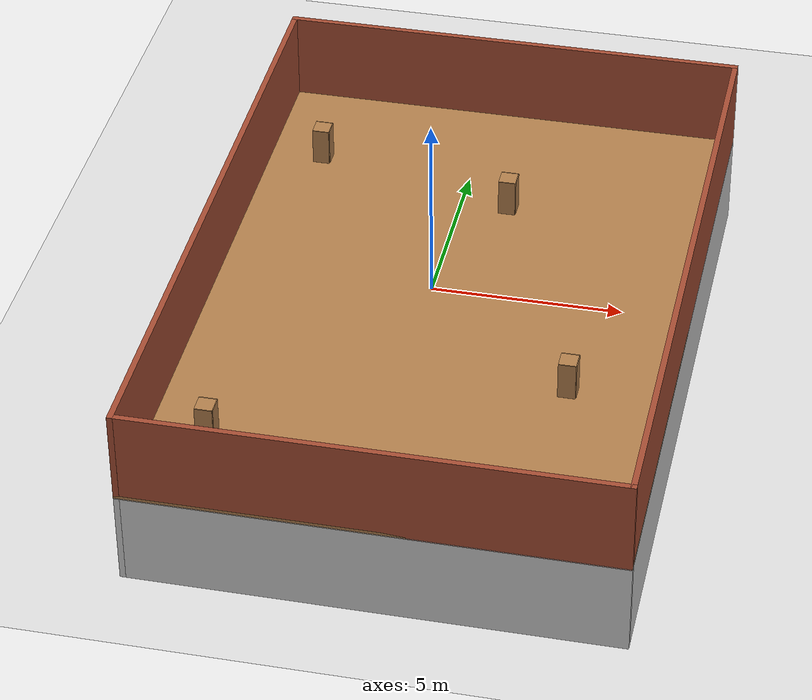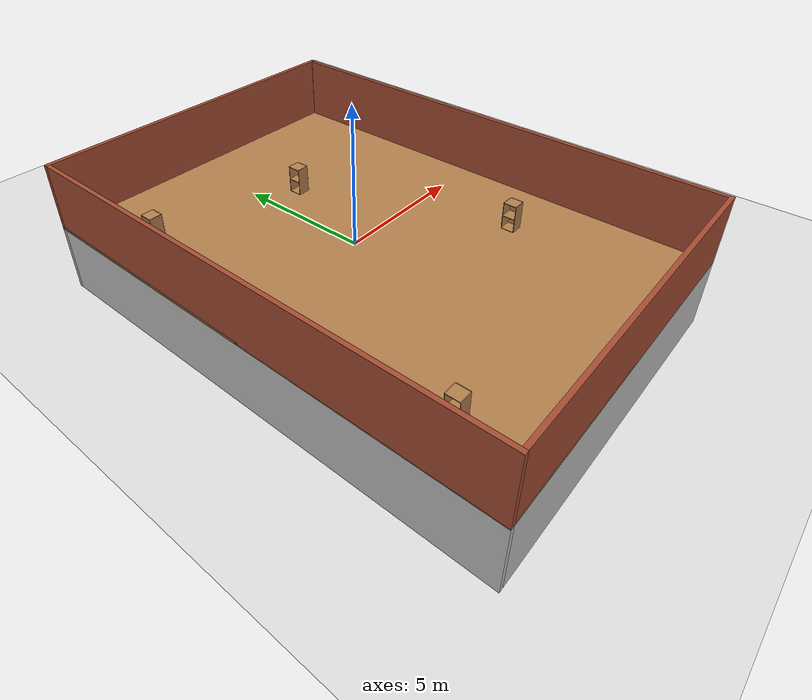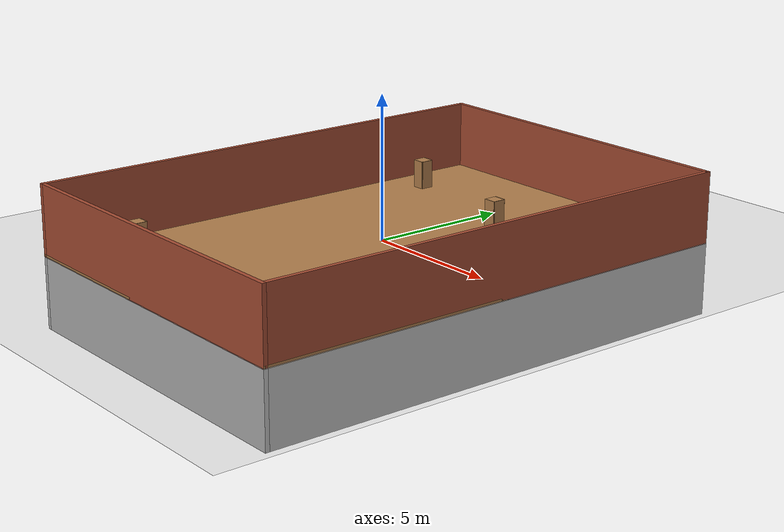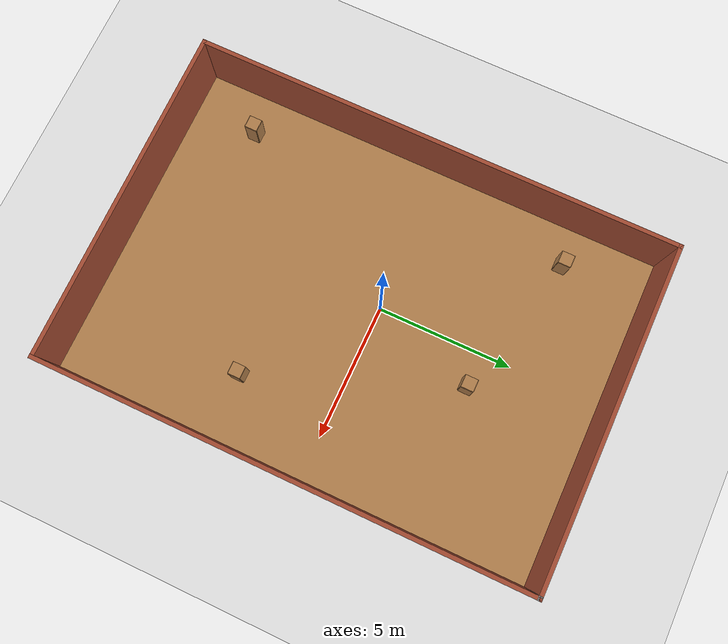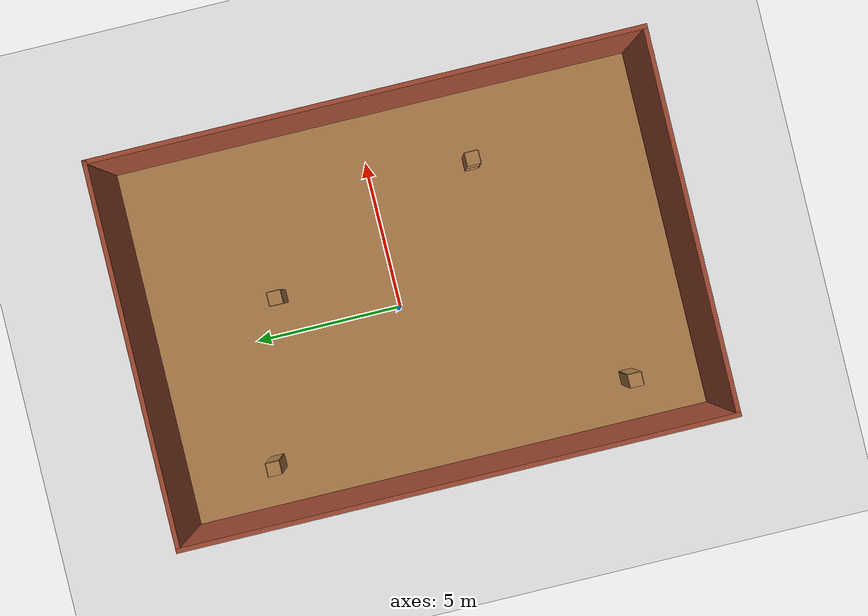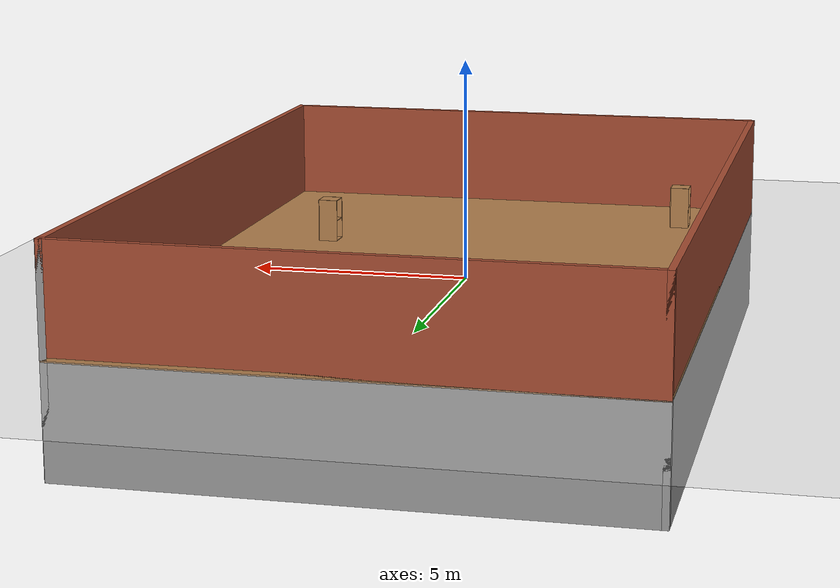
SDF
<sdf version="1.6">
 <world name="default">
  <light name="sun" type="directional">
   <pose>0 0 10 0 -0 0</pose>
   <diffuse>0.8 0.8 0.8 1</diffuse>
   <specular>0.2 0.2 0.2 1</specular>
   <attenuation>
    <range>1000</range>
    <constant>0.9</constant>
    <linear>0.01</linear>
    <quadratic>0.001</quadratic>
   </attenuation>
   <direction>-0.5 0.1 -0.9</direction>
  </light>
  <model name="ground_plane">
   <pose>0 0 -0.05 0 -0 0</pose>
   <static>1</static>
   <link name="link">
    <collision name="collision">
     <geometry><plane><normal>0 0 1</normal><size>100 100</size></plane></geometry>
     <surface>
      <contact><collide_bitmask>65535</collide_bitmask></contact>
      <friction><ode><mu>100</mu><mu2>50</mu2></ode></friction>
     </surface>
    </collision>
    <visual name="visual">
     <cast_shadows>0</cast_shadows>
     <geometry><plane><normal>0 0 1</normal><size>100 100</size></plane></geometry>
     <material>
      <script><uri>file://media/materials/scripts/gazebo.material</uri><name>Gazebo/Grey</name></script>
     </material>
    </visual>
   </link>
  </model>
  <gravity>0 0 -9.8</gravity>
  <magnetic_field>6e-06 2.3e-05 -4.2e-05</magnetic_field>
  <atmosphere type="adiabatic"/>
  <physics name="default_physics" default="0" type="ode">
   <max_step_size>0.001</max_step_size>
   <real_time_factor>1</real_time_factor>
   <real_time_update_rate>1000</real_time_update_rate>
  </physics>
  <scene><ambient>0.4 0.4 0.4 1</ambient><background>0.7 0.7 0.7 1</background><shadows>1</shadows></scene>
  <audio><device>default</device></audio>
  <spherical_coordinates>
   <surface_model>EARTH_WGS84</surface_model>
   <latitude_deg>0</latitude_deg>
   <longitude_deg>0</longitude_deg>
   <elevation>0</elevation>
   <heading_deg>0</heading_deg>
  </spherical_coordinates>
  <model name="simpleTrain">
   <pose>0.510148 -0.52757 -2.6 0 -0 0</pose>
   <link name="Floor_0">
    <collision name="Floor_0_Collision">
     <geometry><box><size>12.51 18 0.1</size></box></geometry>
     <pose>0 0 0.05 0 -0 0</pose>
    </collision>
    <visual name="Floor_0_Visual">
     <pose>0 0 0.05 0 -0 0</pose>
     <geometry><box><size>12.51 18 0.1</size></box></geometry>
     <material>
      <script><uri>file://media/materials/scripts/gazebo.material</uri><name>Gazebo/Wood</name></script>
      <ambient>1 1 1 1</ambient>
     </material>
     <meta><layer>1</layer></meta>
    </visual>
    <pose>0 -0 2.5 0 -0 0</pose>
   </link>
   <link name="Wall_11">
    <collision name="Wall_11_Collision">
     <geometry><box><size>18 0.15 2.5</size></box></geometry>
     <pose>0 0 1.25 0 -0 0</pose>
    </collision>
    <visual name="Wall_11_Visual">
     <pose>0 0 1.25 0 -0 0</pose>
     <geometry><box><size>18 0.15 2.5</size></box></geometry>
     <material>
      <script><uri>file://media/materials/scripts/gazebo.material</uri><name>Gazebo/Bricks</name></script>
      <ambient>1 1 1 1</ambient>
     </material>
     <meta><layer>1</layer></meta>
    </visual>
    <pose>-6.18 -0 2.5 0 -0 -1.5708</pose>
   </link>
   <link name="Wall_12">
    <collision name="Wall_12_Collision">
     <geometry><box><size>12.5 0.15 2.5</size></box></geometry>
     <pose>0 0 1.25 0 -0 0</pose>
    </collision>
    <visual name="Wall_12_Visual">
     <pose>0 0 1.25 0 -0 0</pose>
     <geometry><box><size>12.5 0.15 2.5</size></box></geometry>
     <material>
      <script><uri>file://media/materials/scripts/gazebo.material</uri><name>Gazebo/Bricks</name></script>
      <ambient>1 1 1 1</ambient>
     </material>
     <meta><layer>1</layer></meta>
    </visual>
    <pose>-0.005 8.925 2.5 0 -0 0</pose>
   </link>
   <link name="Wall_13">
    <collision name="Wall_13_Collision">
     <geometry><box><size>0.16 0.15 2.5</size></box></geometry>
     <pose>0 0 1.25 0 -0 0</pose>
    </collision>
    <visual name="Wall_13_Visual">
     <pose>0 0 1.25 0 -0 0</pose>
     <geometry><box><size>0.16 0.15 2.5</size></box></geometry>
     <material>
      <script><uri>file://media/materials/scripts/gazebo.material</uri><name>Gazebo/Grey</name></script>
      <ambient>1 1 1 1</ambient>
     </material>
     <meta><layer>1</layer></meta>
    </visual>
    <pose>6.175 8.925 2.5 0 -0 0</pose>
   </link>
   <link name="Wall_14">
    <collision name="Wall_14_Collision">
     <geometry><box><size>18 0.15 2.5</size></box></geometry>
     <pose>0 0 1.25 0 -0 0</pose>
    </collision>
    <visual name="Wall_14_Visual">
     <pose>0 0 1.25 0 -0 0</pose>
     <geometry><box><size>18 0.15 2.5</size></box></geometry>
     <material>
      <script><uri>file://media/materials/scripts/gazebo.material</uri><name>Gazebo/Bricks</name></script>
      <ambient>1 1 1 1</ambient>
     </material>
     <meta><layer>1</layer></meta>
    </visual>
    <pose>6.18 -0 2.5 0 -0 -1.5708</pose>
   </link>
   <link name="Wall_15">
    <collision name="Wall_15_Collision">
     <geometry><box><size>12.5 0.15 2.5</size></box></geometry>
     <pose>0 0 1.25 0 -0 0</pose>
    </collision>
    <visual name="Wall_15_Visual">
     <pose>0 0 1.25 0 -0 0</pose>
     <geometry><box><size>12.5 0.15 2.5</size></box></geometry>
     <material>
      <script><uri>file://media/materials/scripts/gazebo.material</uri><name>Gazebo/Bricks</name></script>
      <ambient>1 1 1 1</ambient>
     </material>
     <meta><layer>1</layer></meta>
    </visual>
    <pose>0.005 -8.925 2.5 0 -0 3.14159</pose>
   </link>
   <link name="Wall_4">
    <collision name="Wall_4_Collision">
     <geometry><box><size>18 0.15 2.5</size></box></geometry>
     <pose>0 0 1.25 0 -0 0</pose>
    </collision>
    <visual name="Wall_4_Visual">
     <pose>0 0 1.25 0 -0 0</pose>
     <geometry><box><size>18 0.15 2.5</size></box></geometry>
     <material>
      <script><uri>file://media/materials/scripts/gazebo.material</uri><name>Gazebo/Grey</name></script>
      <ambient>1 1 1 1</ambient>
     </material>
     <meta><layer>0</layer></meta>
    </visual>
    <pose>-6.18 -0 0 0 -0 -1.5708</pose>
   </link>
   <link name="Wall_6">
    <collision name="Wall_6_Collision">
     <geometry><box><size>12.5 0.15 2.5</size></box></geometry>
     <pose>0 0 1.25 0 -0 0</pose>
    </collision>
    <visual name="Wall_6_Visual">
     <pose>0 0 1.25 0 -0 0</pose>
     <geometry><box><size>12.5 0.15 2.5</size></box></geometry>
     <material>
      <script><uri>file://media/materials/scripts/gazebo.material</uri><name>Gazebo/Grey</name></script>
      <ambient>1 1 1 1</ambient>
     </material>
     <meta><layer>0</layer></meta>
    </visual>
    <pose>-0.005 8.925 0 0 -0 0</pose>
   </link>
   <link name="Wall_7">
    <collision name="Wall_7_Collision">
     <geometry><box><size>0.16 0.15 2.5</size></box></geometry>
     <pose>0 0 1.25 0 -0 0</pose>
    </collision>
    <visual name="Wall_7_Visual">
     <pose>0 0 1.25 0 -0 0</pose>
     <geometry><box><size>0.16 0.15 2.5</size></box></geometry>
     <material>
      <script><uri>file://media/materials/scripts/gazebo.material</uri><name>Gazebo/Grey</name></script>
      <ambient>1 1 1 1</ambient>
     </material>
     <meta><layer>0</layer></meta>
    </visual>
    <pose>6.175 8.925 0 0 -0 0</pose>
   </link>
   <link name="Wall_8">
    <collision name="Wall_8_Collision">
     <geometry><box><size>18 0.15 2.5</size></box></geometry>
     <pose>0 0 1.25 0 -0 0</pose>
    </collision>
    <visual name="Wall_8_Visual">
     <pose>0 0 1.25 0 -0 0</pose>
     <geometry><box><size>18 0.15 2.5</size></box></geometry>
     <material>
      <script><uri>file://media/materials/scripts/gazebo.material</uri><name>Gazebo/Grey</name></script>
      <ambient>1 1 1 1</ambient>
     </material>
     <meta><layer>0</layer></meta>
    </visual>
    <pose>6.18 -0 0 0 -0 -1.5708</pose>
   </link>
   <link name="Wall_9">
    <collision name="Wall_9_Collision">
     <geometry><box><size>12.5 0.15 2.5</size></box></geometry>
     <pose>0 0 1.25 0 -0 0</pose>
    </collision>
    <visual name="Wall_9_Visual">
     <pose>0 0 1.25 0 -0 0</pose>
     <geometry><box><size>12.5 0.15 2.5</size></box></geometry>
     <material>
      <script><uri>file://media/materials/scripts/gazebo.material</uri><name>Gazebo/Grey</name></script>
      <ambient>1 1 1 1</ambient>
     </material>
     <meta><layer>0</layer></meta>
    </visual>
    <pose>0.005 -8.925 0 0 -0 3.14159</pose>
   </link>
   <static>1</static>
  </model>
  <model name="cabinet">
   <static>1</static>
   <link name="cabinet_bottom_plate">
    <inertial>
     <pose>0 0 -1 0 -0 0</pose>
     <inertia><ixx>2.05</ixx><ixy>0</ixy><ixz>0</ixz><iyy>2.05</iyy><iyz>0</iyz><izz>2.05</izz></inertia>
     <mass>25</mass>
    </inertial>
    <collision name="cabinet_bottom_plate_geom">
     <pose>0 0 0.01 0 -0 0</pose>
     <geometry><box><size>0.45 0.45 0.02</size></box></geometry>
    </collision>
    <visual name="cabinet_bottom_plate_geom_visual">
     <pose>0 0 0.01 0 -0 0</pose>
     <geometry><box><size>0.45 0.45 0.02</size></box></geometry>
     <material>
      <script><uri>file://media/materials/scripts/gazebo.material</uri><name>Gazebo/Wood</name></script>
     </material>
    </visual>
    <collision name="cabinet_bottom_plate_geom_cabinet_back_plate">
     <pose>0.235 0 0.51 0 -0 0</pose>
     <geometry><box><size>0.02 0.45 1.02</size></box></geometry>
    </collision>
    <visual name="cabinet_bottom_plate_geom_cabinet_back_plate_visual">
     <pose>0.235 0 0.51 0 -0 0</pose>
     <geometry><box><size>0.02 0.45 1.02</size></box></geometry>
     <material>
      <script><uri>file://media/materials/scripts/gazebo.material</uri><name>Gazebo/Wood</name></script>
     </material>
    </visual>
    <collision name="cabinet_bottom_plate_geom_cabinet_left_plate">
     <pose>0 0.235 0.51 0 -0 0</pose>
     <geometry><box><size>0.45 0.02 1.02</size></box></geometry>
    </collision>
    <visual name="cabinet_bottom_plate_geom_cabinet_left_plate_visual">
     <pose>0 0.235 0.51 0 -0 0</pose>
     <geometry><box><size>0.45 0.02 1.02</size></box></geometry>
     <material>
      <script><uri>file://media/materials/scripts/gazebo.material</uri><name>Gazebo/Wood</name></script>
     </material>
    </visual>
    <collision name="cabinet_bottom_plate_geom_cabinet_middle_plate">
     <pose>0 0 0.51 0 -0 0</pose>
     <geometry><box><size>0.45 0.45 0.02</size></box></geometry>
    </collision>
    <visual name="cabinet_bottom_plate_geom_cabinet_middle_plate_visual">
     <pose>0 0 0.51 0 -0 0</pose>
     <geometry><box><size>0.45 0.45 0.02</size></box></geometry>
     <material>
      <script><uri>file://media/materials/scripts/gazebo.material</uri><name>Gazebo/Wood</name></script>
     </material>
    </visual>
    <collision name="cabinet_bottom_plate_geom_cabinet_right_plate">
     <pose>0 -0.235 0.51 0 -0 0</pose>
     <geometry><box><size>0.45 0.02 1.02</size></box></geometry>
    </collision>
    <visual name="cabinet_bottom_plate_geom_cabinet_right_plate_visual">
     <pose>0 -0.235 0.51 0 -0 0</pose>
     <geometry><box><size>0.45 0.02 1.02</size></box></geometry>
     <material>
      <script><uri>file://media/materials/scripts/gazebo.material</uri><name>Gazebo/Wood</name></script>
     </material>
    </visual>
    <collision name="cabinet_bottom_plate_geom_cabinet_top_plate">
     <pose>0 0 1.01 0 -0 0</pose>
     <geometry><box><size>0.45 0.45 0.02</size></box></geometry>
    </collision>
    <visual name="cabinet_bottom_plate_geom_cabinet_top_plate_visual">
     <pose>0 0 1.01 0 -0 0</pose>
     <geometry><box><size>0.45 0.45 0.02</size></box></geometry>
     <material>
      <script><uri>file://media/materials/scripts/gazebo.material</uri><name>Gazebo/Wood</name></script>
     </material>
    </visual>
   </link>
   <pose>1.26829 3.89792 0 0 -0 0</pose>
  </model>
  <model name="cabinet_0">
   <static>1</static>
   <link name="cabinet_bottom_plate">
    <inertial>
     <pose>0 0 -1 0 -0 0</pose>
     <inertia><ixx>2.05</ixx><ixy>0</ixy><ixz>0</ixz><iyy>2.05</iyy><iyz>0</iyz><izz>2.05</izz></inertia>
     <mass>25</mass>
    </inertial>
    <collision name="cabinet_bottom_plate_geom">
     <pose>0 0 0.01 0 -0 0</pose>
     <geometry><box><size>0.45 0.45 0.02</size></box></geometry>
    </collision>
    <visual name="cabinet_bottom_plate_geom_visual">
     <pose>0 0 0.01 0 -0 0</pose>
     <geometry><box><size>0.45 0.45 0.02</size></box></geometry>
     <material>
      <script><uri>file://media/materials/scripts/gazebo.material</uri><name>Gazebo/Wood</name></script>
     </material>
    </visual>
    <collision name="cabinet_bottom_plate_geom_cabinet_back_plate">
     <pose>0.235 0 0.51 0 -0 0</pose>
     <geometry><box><size>0.02 0.45 1.02</size></box></geometry>
    </collision>
    <visual name="cabinet_bottom_plate_geom_cabinet_back_plate_visual">
     <pose>0.235 0 0.51 0 -0 0</pose>
     <geometry><box><size>0.02 0.45 1.02</size></box></geometry>
     <material>
      <script><uri>file://media/materials/scripts/gazebo.material</uri><name>Gazebo/Wood</name></script>
     </material>
    </visual>
    <collision name="cabinet_bottom_plate_geom_cabinet_left_plate">
     <pose>0 0.235 0.51 0 -0 0</pose>
     <geometry><box><size>0.45 0.02 1.02</size></box></geometry>
    </collision>
    <visual name="cabinet_bottom_plate_geom_cabinet_left_plate_visual">
     <pose>0 0.235 0.51 0 -0 0</pose>
     <geometry><box><size>0.45 0.02 1.02</size></box></geometry>
     <material>
      <script><uri>file://media/materials/scripts/gazebo.material</uri><name>Gazebo/Wood</name></script>
     </material>
    </visual>
    <collision name="cabinet_bottom_plate_geom_cabinet_middle_plate">
     <pose>0 0 0.51 0 -0 0</pose>
     <geometry><box><size>0.45 0.45 0.02</size></box></geometry>
    </collision>
    <visual name="cabinet_bottom_plate_geom_cabinet_middle_plate_visual">
     <pose>0 0 0.51 0 -0 0</pose>
     <geometry><box><size>0.45 0.45 0.02</size></box></geometry>
     <material>
      <script><uri>file://media/materials/scripts/gazebo.material</uri><name>Gazebo/Wood</name></script>
     </material>
    </visual>
    <collision name="cabinet_bottom_plate_geom_cabinet_right_plate">
     <pose>0 -0.235 0.51 0 -0 0</pose>
     <geometry><box><size>0.45 0.02 1.02</size></box></geometry>
    </collision>
    <visual name="cabinet_bottom_plate_geom_cabinet_right_plate_visual">
     <pose>0 -0.235 0.51 0 -0 0</pose>
     <geometry><box><size>0.45 0.02 1.02</size></box></geometry>
     <material>
      <script><uri>file://media/materials/scripts/gazebo.material</uri><name>Gazebo/Wood</name></script>
     </material>
    </visual>
    <collision name="cabinet_bottom_plate_geom_cabinet_top_plate">
     <pose>0 0 1.01 0 -0 0</pose>
     <geometry><box><size>0.45 0.45 0.02</size></box></geometry>
    </collision>
    <visual name="cabinet_bottom_plate_geom_cabinet_top_plate_visual">
     <pose>0 0 1.01 0 -0 0</pose>
     <geometry><box><size>0.45 0.45 0.02</size></box></geometry>
     <material>
      <script><uri>file://media/materials/scripts/gazebo.material</uri><name>Gazebo/Wood</name></script>
     </material>
    </visual>
   </link>
   <pose>-4.16116 5.25111 0 0 -0 0</pose>
  </model>
  <model name="cabinet_1">
   <static>1</static>
   <link name="cabinet_bottom_plate">
    <inertial>
     <pose>0 0 -1 0 -0 0</pose>
     <inertia><ixx>2.05</ixx><ixy>0</ixy><ixz>0</ixz><iyy>2.05</iyy><iyz>0</iyz><izz>2.05</izz></inertia>
     <mass>25</mass>
    </inertial>
    <collision name="cabinet_bottom_plate_geom">
     <pose>0 0 0.01 0 -0 0</pose>
     <geometry><box><size>0.45 0.45 0.02</size></box></geometry>
    </collision>
    <visual name="cabinet_bottom_plate_geom_visual">
     <pose>0 0 0.01 0 -0 0</pose>
     <geometry><box><size>0.45 0.45 0.02</size></box></geometry>
     <material>
      <script><uri>file://media/materials/scripts/gazebo.material</uri><name>Gazebo/Wood</name></script>
     </material>
    </visual>
    <collision name="cabinet_bottom_plate_geom_cabinet_back_plate">
     <pose>0.235 0 0.51 0 -0 0</pose>
     <geometry><box><size>0.02 0.45 1.02</size></box></geometry>
    </collision>
    <visual name="cabinet_bottom_plate_geom_cabinet_back_plate_visual">
     <pose>0.235 0 0.51 0 -0 0</pose>
     <geometry><box><size>0.02 0.45 1.02</size></box></geometry>
     <material>
      <script><uri>file://media/materials/scripts/gazebo.material</uri><name>Gazebo/Wood</name></script>
     </material>
    </visual>
    <collision name="cabinet_bottom_plate_geom_cabinet_left_plate">
     <pose>0 0.235 0.51 0 -0 0</pose>
     <geometry><box><size>0.45 0.02 1.02</size></box></geometry>
    </collision>
    <visual name="cabinet_bottom_plate_geom_cabinet_left_plate_visual">
     <pose>0 0.235 0.51 0 -0 0</pose>
     <geometry><box><size>0.45 0.02 1.02</size></box></geometry>
     <material>
      <script><uri>file://media/materials/scripts/gazebo.material</uri><name>Gazebo/Wood</name></script>
     </material>
    </visual>
    <collision name="cabinet_bottom_plate_geom_cabinet_middle_plate">
     <pose>0 0 0.51 0 -0 0</pose>
     <geometry><box><size>0.45 0.45 0.02</size></box></geometry>
    </collision>
    <visual name="cabinet_bottom_plate_geom_cabinet_middle_plate_visual">
     <pose>0 0 0.51 0 -0 0</pose>
     <geometry><box><size>0.45 0.45 0.02</size></box></geometry>
     <material>
      <script><uri>file://media/materials/scripts/gazebo.material</uri><name>Gazebo/Wood</name></script>
     </material>
    </visual>
    <collision name="cabinet_bottom_plate_geom_cabinet_right_plate">
     <pose>0 -0.235 0.51 0 -0 0</pose>
     <geometry><box><size>0.45 0.02 1.02</size></box></geometry>
    </collision>
    <visual name="cabinet_bottom_plate_geom_cabinet_right_plate_visual">
     <pose>0 -0.235 0.51 0 -0 0</pose>
     <geometry><box><size>0.45 0.02 1.02</size></box></geometry>
     <material>
      <script><uri>file://media/materials/scripts/gazebo.material</uri><name>Gazebo/Wood</name></script>
     </material>
    </visual>
    <collision name="cabinet_bottom_plate_geom_cabinet_top_plate">
     <pose>0 0 1.01 0 -0 0</pose>
     <geometry><box><size>0.45 0.45 0.02</size></box></geometry>
    </collision>
    <visual name="cabinet_bottom_plate_geom_cabinet_top_plate_visual">
     <pose>0 0 1.01 0 -0 0</pose>
     <geometry><box><size>0.45 0.45 0.02</size></box></geometry>
     <material>
      <script><uri>file://media/materials/scripts/gazebo.material</uri><name>Gazebo/Wood</name></script>
     </material>
    </visual>
   </link>
   <pose>-4.12466 -6.94993 0 0 -0 0</pose>
  </model>
  <model name="cabinet_2">
   <static>1</static>
   <link name="cabinet_bottom_plate">
    <inertial>
     <pose>0 0 -1 0 -0 0</pose>
     <inertia><ixx>2.05</ixx><ixy>0</ixy><ixz>0</ixz><iyy>2.05</iyy><iyz>0</iyz><izz>2.05</izz></inertia>
     <mass>25</mass>
    </inertial>
    <collision name="cabinet_bottom_plate_geom">
     <pose>0 0 0.01 0 -0 0</pose>
     <geometry><box><size>0.45 0.45 0.02</size></box></geometry>
    </collision>
    <visual name="cabinet_bottom_plate_geom_visual">
     <pose>0 0 0.01 0 -0 0</pose>
     <geometry><box><size>0.45 0.45 0.02</size></box></geometry>
     <material>
      <script><uri>file://media/materials/scripts/gazebo.material</uri><name>Gazebo/Wood</name></script>
     </material>
    </visual>
    <collision name="cabinet_bottom_plate_geom_cabinet_back_plate">
     <pose>0.235 0 0.51 0 -0 0</pose>
     <geometry><box><size>0.02 0.45 1.02</size></box></geometry>
    </collision>
    <visual name="cabinet_bottom_plate_geom_cabinet_back_plate_visual">
     <pose>0.235 0 0.51 0 -0 0</pose>
     <geometry><box><size>0.02 0.45 1.02</size></box></geometry>
     <material>
      <script><uri>file://media/materials/scripts/gazebo.material</uri><name>Gazebo/Wood</name></script>
     </material>
    </visual>
    <collision name="cabinet_bottom_plate_geom_cabinet_left_plate">
     <pose>0 0.235 0.51 0 -0 0</pose>
     <geometry><box><size>0.45 0.02 1.02</size></box></geometry>
    </collision>
    <visual name="cabinet_bottom_plate_geom_cabinet_left_plate_visual">
     <pose>0 0.235 0.51 0 -0 0</pose>
     <geometry><box><size>0.45 0.02 1.02</size></box></geometry>
     <material>
      <script><uri>file://media/materials/scripts/gazebo.material</uri><name>Gazebo/Wood</name></script>
     </material>
    </visual>
    <collision name="cabinet_bottom_plate_geom_cabinet_middle_plate">
     <pose>0 0 0.51 0 -0 0</pose>
     <geometry><box><size>0.45 0.45 0.02</size></box></geometry>
    </collision>
    <visual name="cabinet_bottom_plate_geom_cabinet_middle_plate_visual">
     <pose>0 0 0.51 0 -0 0</pose>
     <geometry><box><size>0.45 0.45 0.02</size></box></geometry>
     <material>
      <script><uri>file://media/materials/scripts/gazebo.material</uri><name>Gazebo/Wood</name></script>
     </material>
    </visual>
    <collision name="cabinet_bottom_plate_geom_cabinet_right_plate">
     <pose>0 -0.235 0.51 0 -0 0</pose>
     <geometry><box><size>0.45 0.02 1.02</size></box></geometry>
    </collision>
    <visual name="cabinet_bottom_plate_geom_cabinet_right_plate_visual">
     <pose>0 -0.235 0.51 0 -0 0</pose>
     <geometry><box><size>0.45 0.02 1.02</size></box></geometry>
     <material>
      <script><uri>file://media/materials/scripts/gazebo.material</uri><name>Gazebo/Wood</name></script>
     </material>
    </visual>
    <collision name="cabinet_bottom_plate_geom_cabinet_top_plate">
     <pose>0 0 1.01 0 -0 0</pose>
     <geometry><box><size>0.45 0.45 0.02</size></box></geometry>
    </collision>
    <visual name="cabinet_bottom_plate_geom_cabinet_top_plate_visual">
     <pose>0 0 1.01 0 -0 0</pose>
     <geometry><box><size>0.45 0.45 0.02</size></box></geometry>
     <material>
      <script><uri>file://media/materials/scripts/gazebo.material</uri><name>Gazebo/Wood</name></script>
     </material>
    </visual>
   </link>
   <pose>4.18287 -3.47229 0 0 -0 0</pose>
  </model>
 </world>
</sdf>
